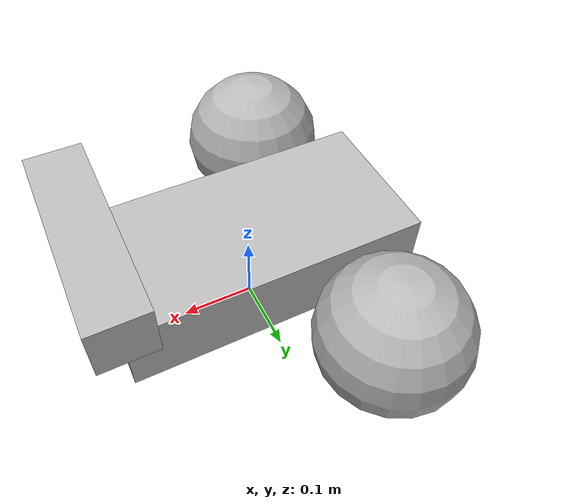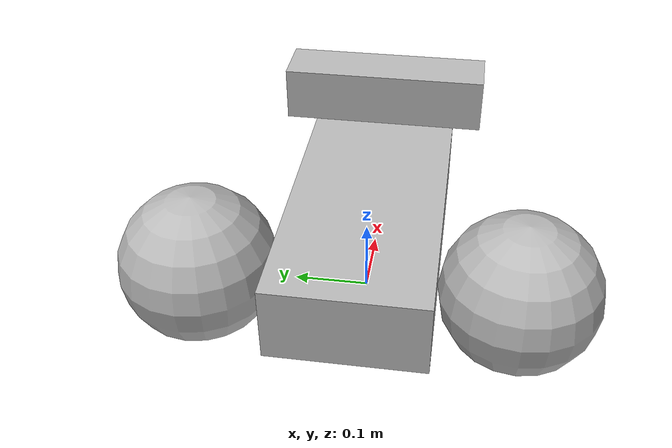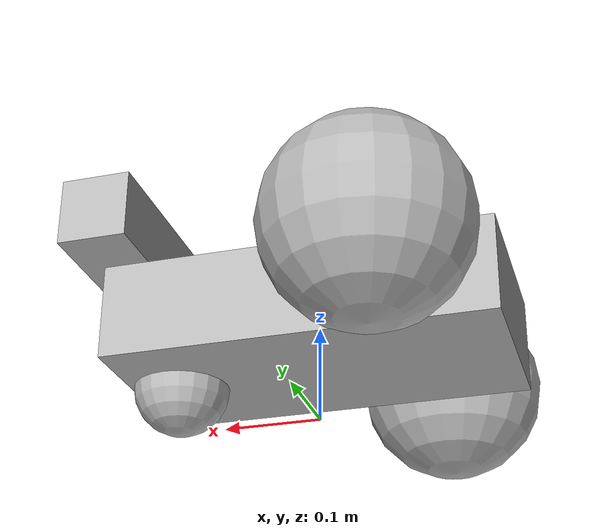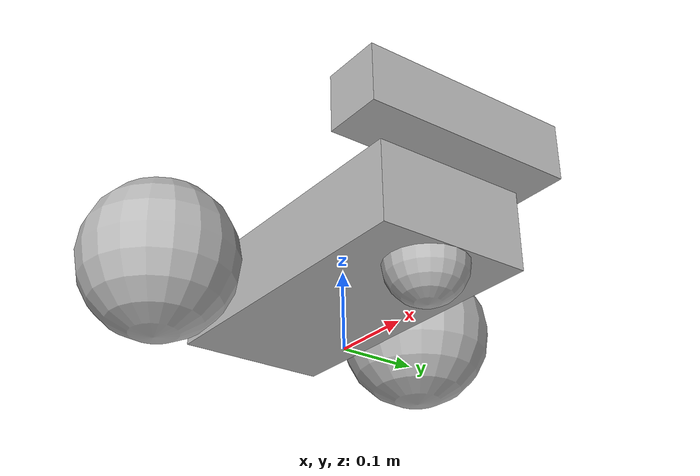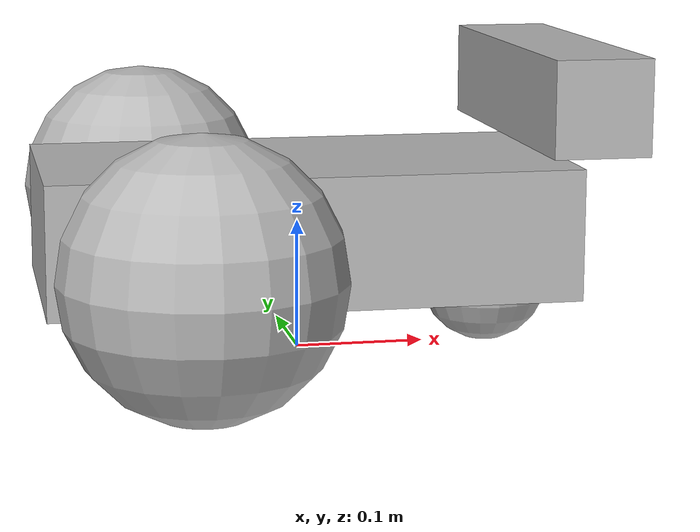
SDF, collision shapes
<?xml version='1.0'?>
<sdf version='1.5'>
  <model name="qt_pi_kinect">
    <link name='chassis'>

      <pose>0 0 0.1 0 0 0</pose>

      <inertial>
         <mass>20</mass>
         <pose>0.10 0 -0.05 0 0 0</pose>
      </inertial>

      <collision name='collision'>
        <geometry>
          <box>
            <size>.4 .2 .1</size>
          </box>
        </geometry>
      </collision>

      <visual name='visual'>
        <geometry>
          <box>
            <size>.4 .2 .1</size>
          </box>
        </geometry>
      </visual>

      <collision name='caster_collision'>
        <pose>0.15 0 -0.05 0 0 0</pose>
        <geometry>
          <sphere>
            <radius>.05</radius>
          </sphere>
        </geometry>

      <surface>
      <bounce>
        <restitution_coefficient>0.0</restitution_coefficient>
        <threshold>0.01</threshold>
      </bounce>
      <contact>
        <ode>
          <max_vel>0</max_vel>
          <min_depth>0.001</min_depth>
        </ode>
      </contact>
          <friction>
            <ode>
              <mu>0</mu>
              <mu2>0</mu2>
              <slip1>1.0</slip1>
              <slip2>1.0</slip2>
            </ode>
          </friction>
        </surface>
      </collision>

      <visual name='caster_visual'>
        <pose>0.15 0 -0.05 0 0 0</pose>
        <geometry>
          <sphere>
            <radius>.05</radius>
          </sphere>
        </geometry>
      </visual>
    </link>

    <link name="left_wheel">
      <pose>-0.1 0.2 0.1 0 0 0</pose>
              <inertial>
            <mass>5</mass>
        </inertial>
      <collision name="collision">
      <surface>
       <friction>
        <ode>
          <mu>10</mu>
          <mu2>10</mu2>
        </ode>
      </friction>
      <bounce>
        <restitution_coefficient>0.0</restitution_coefficient>
        <threshold>0.01</threshold>
      </bounce>
      <contact>
        <ode>
          <max_vel>0</max_vel>
          <min_depth>0.001</min_depth>
        </ode>
      </contact>
    </surface>
        <geometry>
    <sphere>
            <radius>.1</radius>
          </sphere>
        </geometry>
      </collision>
      <visual name="visual">
        <geometry>
<sphere>
            <radius>.1</radius>
          </sphere>
        </geometry>
      </visual>
    </link>

    <link name="right_wheel">
      <pose>-0.1 -0.2 0.1 0 0 0</pose>
              <inertial>
            <mass>5</mass>
        </inertial>
      <collision name="collision">

      <surface>
       <friction>
        <ode>
          <mu>10</mu>
          <mu2>10</mu2>
        </ode>
      </friction>
      <bounce>
        <restitution_coefficient>0.0</restitution_coefficient>
        <threshold>0.01</threshold>
      </bounce>
      <contact>
        <ode>
          <max_vel>0</max_vel>
          <min_depth>0.001</min_depth>
        </ode>
      </contact>
    </surface>

        <geometry>
        <sphere>
            <radius>.1</radius>
          </sphere>
        </geometry>
      </collision>
      <visual name="visual">
        <geometry>
          <sphere>
            <radius>.1</radius>
          </sphere>
        </geometry>
      </visual>
    </link>
    <joint type="revolute" name="left_wheel_hinge">
      <pose>0 0 0 0 0 0</pose>
      <child>left_wheel</child>
      <parent>chassis</parent>
      <axis>
        <xyz>0 1 0</xyz>
      </axis>
    </joint>

    <joint type="revolute" name="right_wheel_hinge">
      <pose>0 0 0 0 0 0</pose>
      <child>right_wheel</child>
      <parent>chassis</parent>
      <axis>
        <xyz>0 1 0</xyz>
      </axis>
    </joint>

    <include>
      <uri>model://kinect</uri>
      <pose>0.2 0 0.2 0 0 0</pose>
    </include>

    <joint name="kinect_joint" type="fixed">
      <child>kinect::link</child>
      <parent>chassis</parent>
    </joint>

   <plugin name="differential_drive_controller" filename="libgazebo_ros_diff_drive.so">
      <alwaysOn>true</alwaysOn>
      <updateRate>30</updateRate>
      <leftJoint>left_wheel_hinge</leftJoint>
      <robotNamespace>qt_pi</robotNamespace>
      <rightJoint>right_wheel_hinge</rightJoint>
      <wheelSeparation>0.4</wheelSeparation>
      <wheelDiameter>0.2</wheelDiameter>
      <publishWheelTF>1</publishWheelTF>
      <wheelTorque>5</wheelTorque>
      <commandTopic>cmd_vel</commandTopic>
      <odometryTopic>odom</odometryTopic>
      <robotBaseFrame>base_link</robotBaseFrame>
      <odometryFrame>odom</odometryFrame>
      <publishTf>1</publishTf>
      <publishOdomTF>true</publishOdomTF>
      <rosDebugLevel>1</rosDebugLevel>
      <publishWheelJointState>false</publishWheelJointState>
      <wheelAcceleration>0</wheelAcceleration>
    </plugin>
  </model>
</sdf>

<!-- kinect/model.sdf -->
<sdf version="1.5">
  <model name="kinect">
    <pose>0 0 0.036 0 0 0</pose>
    <link name="link">
      <inertial>
        <mass>0.1</mass>
      </inertial>
      <collision name="collision">
        <geometry>
          <box>
            <size>0.073000 0.276000 0.072000</size>
          </box>
        </geometry>
      </collision>
      <visual name="visual">
        <geometry>
          <mesh>
            <uri>model://kinect/meshes/kinect.dae</uri>
          </mesh>
        </geometry>
      </visual>
      <sensor name="camera" type="depth">
        <update_rate>15</update_rate>
        <camera>
          <horizontal_fov>1.2215</horizontal_fov>
          <image>
            <width>640</width>
            <height>480</height>
            <format>R8G8B8</format>
          </image>
          <clip>
            <near>0.05</near>
            <far>12</far>
          </clip>
        </camera>
          <plugin name="camera_plugin" filename="libgazebo_ros_openni_kinect.so">
            <robotNamespace>qt_pi</robotNamespace>
            <baseline>0.2</baseline>
            <alwaysOn>true</alwaysOn>
            <updateRate>15</updateRate>
            <cameraName>camera_ir</cameraName>
            <imageTopicName>/qt_pi/camera_ir/color/image_raw</imageTopicName>
            <cameraInfoTopicName>/qt_pi/camera_ir/color/camera_info</cameraInfoTopicName>
            <depthImageTopicName>/qt_pi/camera_ir/depth/image_raw</depthImageTopicName>
            <depthImageInfoTopicName>/camera_ir/depth/camera_info</depthImageInfoTopicName>
            <pointCloudTopicName>/qt_pi/camera_ir/depth/points</pointCloudTopicName>
            <frameName>camera_link</frameName>
            <pointCloudCutoff>0.05</pointCloudCutoff>
            <distortionK1>0</distortionK1>
            <distortionK2>0</distortionK2>
            <distortionK3>0</distortionK3>
            <distortionT1>0</distortionT1>
            <distortionT2>0</distortionT2>
            <CxPrime>0</CxPrime>
            <Cx>0</Cx>
            <Cy>0</Cy>
            <focalLength>0</focalLength>
            <hackBaseline>0</hackBaseline>
          </plugin>
      </sensor>
    </link>
  </model>
</sdf>
